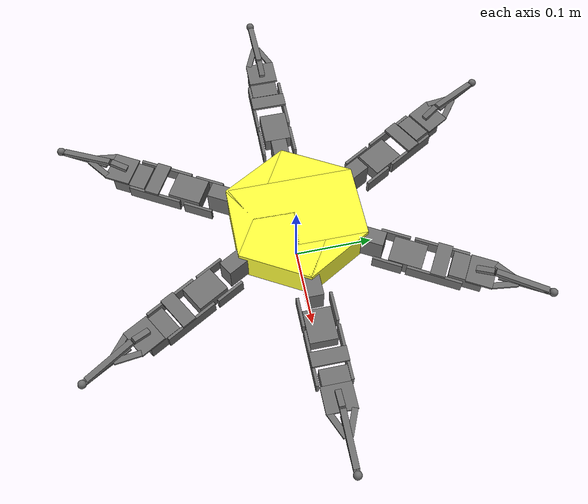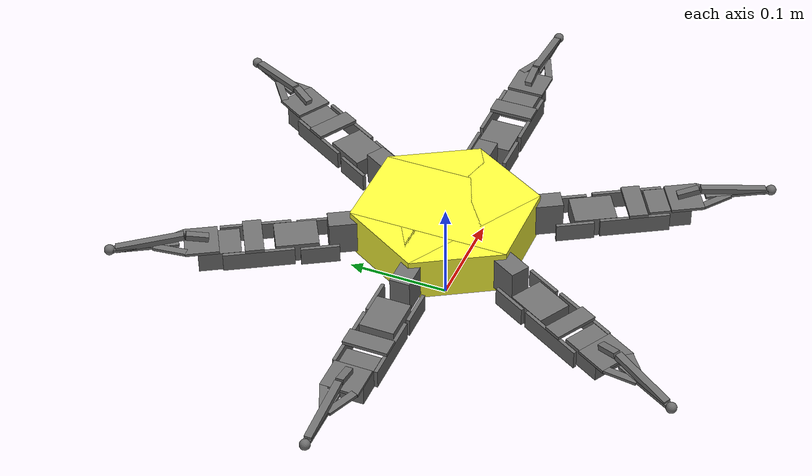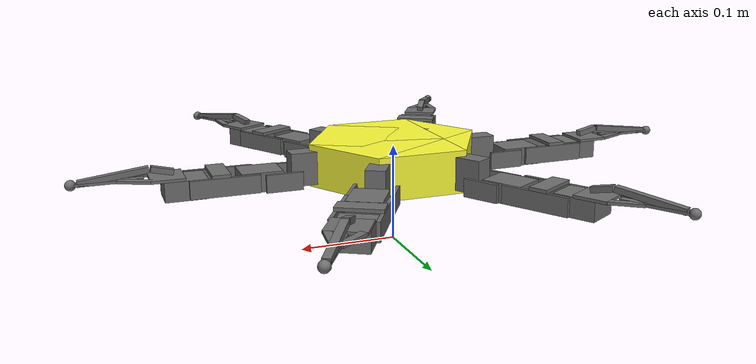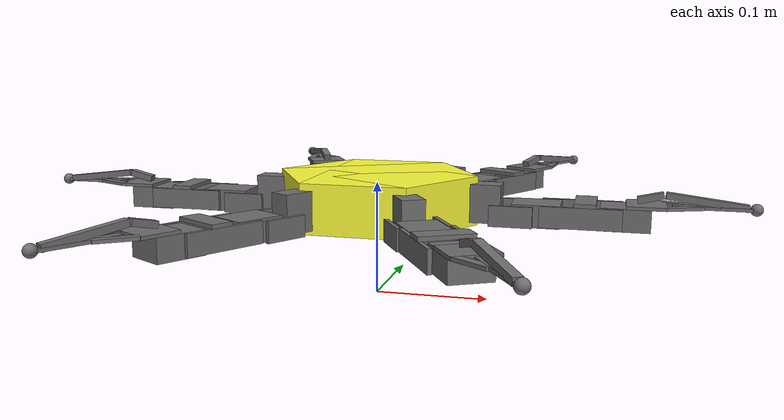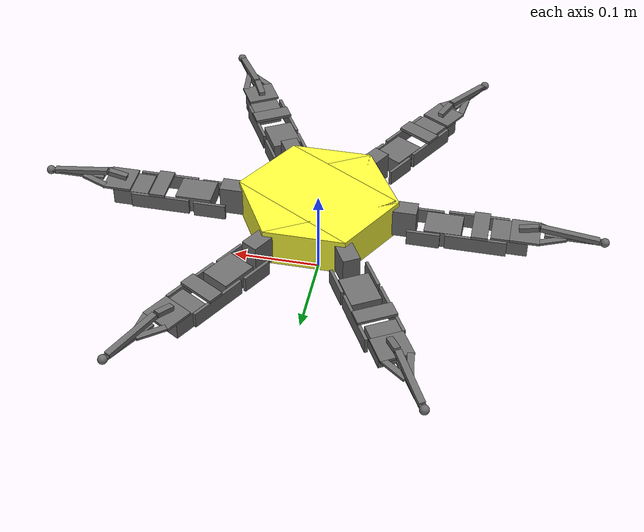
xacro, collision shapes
<?xml version="1.0"?>
<robot xmlns:xacro="http://www.ros.org/wiki/xacro" name="hexapod_bot">
    <link name="robot_base">
        <inertial>
            <origin rpy="-0.000000 -1.570796 0.000000" xyz="0.000000 0.000000 0.088000" />
            <inertia ixz="0.0" iyz="-1.0599726169012e-25" izz="0.0013510887854536" ixy="0.0" ixx="0.0024276637552773" iyy="0.0013510883080843" />
            <mass value="0.10000000149012" />
        </inertial>
        <collision name="hexapod">
            <origin rpy="3.141592 3.141593 -1.047198" xyz="0.000000 0.000000 0.088000" />
            <geometry>
                <box size="0.090000 0.155885 0.042800" />
            </geometry>
        </collision>
        <collision name="hexapod">
            <origin rpy="3.141592 3.141593 -2.094395" xyz="0.000000 0.000000 0.088000" />
            <geometry>
                <box size="0.090000 0.155885 0.042800" />
            </geometry>
        </collision>
        <collision name="hexapod">
            <origin rpy="3.141593 3.141593 3.141593" xyz="0.000000 0.000000 0.088000" />
            <geometry>
                <box size="0.090000 0.155885 0.042800" />
            </geometry>
        </collision>
        <visual name="body">
            <origin rpy="1.570796 3.141593 3.141593" xyz="-0.000000 -0.000000 0.087900" />
            <geometry>
                <mesh filename="package://hexapod_description/meshes/stl/hexapod_body_vis_1.stl" />
            </geometry>
            <material name="body_material">
                <color rgba="1.000000 1.000000 0.229358 1.0" />
            </material>
        </visual>
    </link>
    <joint type="revolute" name="joint1_">
        <axis xyz="0 0 1" />
        <parent link="robot_base" />
        <child link="link1Respondable_" />
        <origin rpy="3.141593 3.141593 3.141593" xyz="0.080000 -0.000000 0.091002" />
        <limit lower="-1.570796" upper="1.570796" effort="5" velocity="2"/>
    </joint>
    <link name="link1Respondable_">
        <inertial>
            <origin rpy="-0.000000 -1.570796 0.000000" xyz="0.014738 -0.000003 -0.005295" />
            <inertia ixz="-6.8338299564474e-06" iyz="-1.7708812030972e-08" izz="4.1533390889355e-05" ixy="-4.5641021282422e-09" ixx="7.8340611859854e-05" iyy="7.9824142668009e-05" />
            <mass value="0.050000000745058" />
        </inertial>
        <collision name="link1Respondable_">
            <origin rpy="-3.141593 3.141593 -3.141593" xyz="0.010391 -0.000000 -0.004175" />
            <geometry>
                <box size="0.040600 0.019300 0.033300" />
            </geometry>
        </collision>
        <collision name="link1Respondable_">
            <origin rpy="-3.141593 3.141593 -3.141593" xyz="0.040338 -0.019899 -0.011893" />
            <geometry>
                <box size="0.036400 0.003400 0.017900" />
            </geometry>
        </collision>
        <collision name="link1Respondable_">
            <origin rpy="-3.141593 3.141593 -3.141593" xyz="0.040338 0.019858 -0.011893" />
            <geometry>
                <box size="0.036400 0.003400 0.017900" />
            </geometry>
        </collision>
        <visual name="link1_">
            <origin rpy="1.570796 3.141593 -3.141593" xyz="0.021040 -0.000020 0.000000" />
            <geometry>
                <mesh filename="package://hexapod_description/meshes/stl/hexapod_link1__vis_1.stl" />
            </geometry>
            <material name="link1__material">
                <color rgba="0.435294 0.435294 0.435294 1.0" />
            </material>
        </visual>
        <visual name="link1_">
            <origin rpy="1.570796 3.141593 -3.141593" xyz="0.021040 -0.000020 0.000000" />
            <geometry>
                <mesh filename="package://hexapod_description/meshes/stl/hexapod_link1__vis_2.stl" />
            </geometry>
            <material name="link1__material">
                <color rgba="1.000000 1.000000 1.000000 1.0" />
            </material>
        </visual>
    </link>
    <joint type="revolute" name="joint2_">
        <axis xyz="0 0 1" />
        <parent link="link1Respondable_" />
        <child link="link2Respondable_" />
        <origin rpy="1.570796 3.141593 3.141593" xyz="0.050264 -0.000000 -0.011203" />
        <limit lower="-1.570796" upper="1.570796" effort="5" velocity="2"/>
    </joint>
    <link name="link2Respondable_">
        <inertial>
            <origin rpy="-1.570948 3.141840 1.570796" xyz="0.021368 -0.000957 -0.000929" />
            <inertia ixz="4.3307204722909e-06" iyz="1.6165304875702e-06" izz="3.1689530655159e-05" ixy="-1.4428314683974e-07" ixx="0.00010087736890985" iyy="8.0637562647446e-05" />
            <mass value="0.050000000745058" />
        </inertial>
        <collision name="link2Respondable_">
            <origin rpy="-3.141344 3.141449 -0.000000" xyz="0.010391 0.000000 -0.001311" />
            <geometry>
                <box size="0.040600 0.019300 0.033300" />
            </geometry>
        </collision>
        <collision name="link2Respondable_">
            <origin rpy="-0.000124 3.141593 1.570797" xyz="0.050584 -0.011339 -0.000000" />
            <geometry>
                <box size="0.003400 0.017800 0.043200" />
            </geometry>
        </collision>
        <collision name="link2Respondable_">
            <origin rpy="0.338915 4.712381 -0.338909" xyz="0.047122 -0.000690 -0.019879" />
            <geometry>
                <box size="0.003400 0.017900 0.067000" />
            </geometry>
        </collision>
        <collision name="link2Respondable_">
            <origin rpy="0.338915 4.712381 -0.338909" xyz="0.047122 -0.000690 0.019879" />
            <geometry>
                <box size="0.003400 0.017900 0.067000" />
            </geometry>
        </collision>
        <visual name="link2_">
            <origin rpy="3.141576 3.141592 1.570797" xyz="0.032099 -0.001709 0.001054" />
            <geometry>
                <mesh filename="package://hexapod_description/meshes/stl/hexapod_link2__vis_1.stl" />
            </geometry>
            <material name="link2__material">
                <color rgba="0.435294 0.435294 0.435294 1.0" />
            </material>
        </visual>
        <visual name="link2_">
            <origin rpy="3.141576 3.141592 1.570797" xyz="0.032099 -0.001709 0.001054" />
            <geometry>
                <mesh filename="package://hexapod_description/meshes/stl/hexapod_link2__vis_2.stl" />
            </geometry>
            <material name="link2__material">
                <color rgba="1.000000 1.000000 1.000000 1.0" />
            </material>
        </visual>
    </link>
    <joint type="revolute" name="joint3_">
        <axis xyz="0 0 1" />
        <parent link="link2Respondable_" />
        <child link="link3Respondable_" />
        <origin rpy="-3.141593 3.141593 -2.617994" xyz="0.072382 0.000000 -0.000000" />
        <limit lower="-1.570796" upper="1.570796" effort="5" velocity="2"/>
    </joint>
    <link name="link3Respondable_">
        <inertial>
            <origin rpy="1.570515 3.141150 0.856995" xyz="0.017578 -0.014182 0.000950" />
            <inertia ixz="2.5180635506699e-06" iyz="-1.7834374134828e-06" izz="1.8237452925203e-05" ixy="-1.7486273661174e-07" ixx="0.00012192281434478" iyy="0.00011563429148452" />
            <mass value="0.050000000745058" />
        </inertial>
        <collision name="link3Respondable_">
            <origin rpy="0.000000 3.141593 -0.523599" xyz="0.008999 -0.005195 0.001311" />
            <geometry>
                <box size="0.040600 0.019300 0.033300" />
            </geometry>
        </collision>
        <collision name="link3Respondable_">
            <origin rpy="-1.570796 3.141593 1.047197" xyz="0.090768 -0.065166 0.000000" />
            <geometry>
                <sphere radius="0.0049999793991446" />
            </geometry>
        </collision>
        <collision name="link3Respondable_">
            <origin rpy="-1.570796 3.141593 1.047198" xyz="0.062893 -0.049047 -0.000000" />
            <geometry>
                <box size="0.002800 0.007100 0.064000" />
            </geometry>
        </collision>
        <collision name="link3Respondable_">
            <origin rpy="-1.972222 3.141593 1.047197" xyz="0.042582 -0.037321 0.008116" />
            <geometry>
                <box size="0.002800 0.007100 0.032000" />
            </geometry>
        </collision>
        <collision name="link3Respondable_">
            <origin rpy="-1.169371 3.141593 1.047197" xyz="0.042405 -0.037218 -0.008460" />
            <geometry>
                <box size="0.002800 0.007100 0.032000" />
            </geometry>
        </collision>
        <collision name="link3Respondable_">
            <origin rpy="-1.570796 3.141593 1.047198" xyz="0.017456 -0.022814 -0.000000" />
            <geometry>
                <box size="0.002800 0.036300 0.032000" />
            </geometry>
        </collision>
        <collision name="link3Respondable_">
            <origin rpy="-1.570796 3.141593 0.820305" xyz="0.017138 -0.030056 -0.000000" />
            <geometry>
                <box size="0.005600 0.007100 0.021300" />
            </geometry>
        </collision>
        <collision name="link3Respondable_">
            <origin rpy="-1.570796 3.141593 1.169371" xyz="0.055680 -0.050546 -0.000000" />
            <geometry>
                <box size="0.005600 0.007100 0.064000" />
            </geometry>
        </collision>
        <visual name="link3_">
            <origin rpy="3.141593 3.141593 1.047198" xyz="0.039590 -0.030363 -0.002763" />
            <geometry>
                <mesh filename="package://hexapod_description/meshes/stl/hexapod_link3__vis_1.stl" />
            </geometry>
            <material name="link3__material">
                <color rgba="0.435294 0.435294 0.435294 1.0" />
            </material>
        </visual>
        <visual name="link3_">
            <origin rpy="3.141593 3.141593 1.047198" xyz="0.039590 -0.030363 -0.002763" />
            <geometry>
                <mesh filename="package://hexapod_description/meshes/stl/hexapod_link3__vis_2.stl" />
            </geometry>
            <material name="link3__material">
                <color rgba="1.000000 1.000000 0.229358 1.0" />
            </material>
        </visual>
    </link>
    <joint type="revolute" name="joint1__2">
        <axis xyz="0 0 1" />
        <parent link="robot_base" />
        <child link="link1Respondable__2" />
        <origin rpy="3.141592 3.141593 -2.094395" xyz="0.040000 0.069282 0.091002" />
        <limit lower="-1.570796" upper="1.570796" effort="5" velocity="2"/>
    </joint>
    <link name="link1Respondable__2">
        <inertial>
            <origin rpy="-0.000000 -1.570796 0.000000" xyz="0.014738 -0.000003 -0.005295" />
            <inertia ixz="-6.8338299564474e-06" iyz="-1.7708812030972e-08" izz="4.1533390889355e-05" ixy="-4.5641021282422e-09" ixx="7.8340611859854e-05" iyy="7.9824142668009e-05" />
            <mass value="0.050000000745058" />
        </inertial>
        <collision name="link1Respondable_">
            <origin rpy="3.141593 3.141593 -3.141593" xyz="0.010391 -0.000000 -0.004175" />
            <geometry>
                <box size="0.040600 0.019300 0.033300" />
            </geometry>
        </collision>
        <collision name="link1Respondable_">
            <origin rpy="3.141593 3.141593 -3.141593" xyz="0.040338 -0.019899 -0.011893" />
            <geometry>
                <box size="0.036400 0.003400 0.017900" />
            </geometry>
        </collision>
        <collision name="link1Respondable_">
            <origin rpy="3.141593 3.141593 -3.141593" xyz="0.040338 0.019858 -0.011893" />
            <geometry>
                <box size="0.036400 0.003400 0.017900" />
            </geometry>
        </collision>
        <visual name="link1_">
            <origin rpy="1.570796 3.141593 -3.141593" xyz="0.021040 -0.000020 0.000000" />
            <geometry>
                <mesh filename="package://hexapod_description/meshes/stl/hexapod_link1__2_vis_1.stl" />
            </geometry>
            <material name="link1__2_material">
                <color rgba="0.435294 0.435294 0.435294 1.0" />
            </material>
        </visual>
        <visual name="link1_">
            <origin rpy="1.570796 3.141593 -3.141593" xyz="0.021040 -0.000020 0.000000" />
            <geometry>
                <mesh filename="package://hexapod_description/meshes/stl/hexapod_link1__2_vis_2.stl" />
            </geometry>
            <material name="link1__2_material">
                <color rgba="1.000000 1.000000 1.000000 1.0" />
            </material>
        </visual>
    </link>
    <joint type="revolute" name="joint2__2">
        <axis xyz="0 0 1" />
        <parent link="link1Respondable__2" />
        <child link="link2Respondable__2" />
        <origin rpy="1.570796 3.141593 3.141593" xyz="0.050264 -0.000000 -0.011203" />
        <limit lower="-1.570796" upper="1.570796" effort="5" velocity="2"/>
    </joint>
    <link name="link2Respondable__2">
        <inertial>
            <origin rpy="-1.570948 3.141840 1.570796" xyz="0.021368 -0.000957 -0.000929" />
            <inertia ixz="4.3307204722909e-06" iyz="1.6165304875702e-06" izz="3.1689530655159e-05" ixy="-1.4428314683974e-07" ixx="0.00010087736890985" iyy="8.0637562647446e-05" />
            <mass value="0.050000000745058" />
        </inertial>
        <collision name="link2Respondable_">
            <origin rpy="-3.141344 3.141449 -0.000000" xyz="0.010391 0.000000 -0.001311" />
            <geometry>
                <box size="0.040600 0.019300 0.033300" />
            </geometry>
        </collision>
        <collision name="link2Respondable_">
            <origin rpy="-0.000124 3.141593 1.570797" xyz="0.050584 -0.011339 -0.000000" />
            <geometry>
                <box size="0.003400 0.017800 0.043200" />
            </geometry>
        </collision>
        <collision name="link2Respondable_">
            <origin rpy="0.338915 4.712381 -0.338909" xyz="0.047122 -0.000690 -0.019879" />
            <geometry>
                <box size="0.003400 0.017900 0.067000" />
            </geometry>
        </collision>
        <collision name="link2Respondable_">
            <origin rpy="0.338915 4.712381 -0.338909" xyz="0.047122 -0.000690 0.019879" />
            <geometry>
                <box size="0.003400 0.017900 0.067000" />
            </geometry>
        </collision>
        <visual name="link2_">
            <origin rpy="3.141576 3.141592 1.570797" xyz="0.032099 -0.001709 0.001054" />
            <geometry>
                <mesh filename="package://hexapod_description/meshes/stl/hexapod_link2__2_vis_1.stl" />
            </geometry>
            <material name="link2__2_material">
                <color rgba="0.435294 0.435294 0.435294 1.0" />
            </material>
        </visual>
        <visual name="link2_">
            <origin rpy="3.141576 3.141592 1.570797" xyz="0.032099 -0.001709 0.001054" />
            <geometry>
                <mesh filename="package://hexapod_description/meshes/stl/hexapod_link2__2_vis_2.stl" />
            </geometry>
            <material name="link2__2_material">
                <color rgba="1.000000 1.000000 1.000000 1.0" />
            </material>
        </visual>
    </link>
    <joint type="revolute" name="joint3__2">
        <axis xyz="0 0 1" />
        <parent link="link2Respondable__2" />
        <child link="link3Respondable__2" />
        <origin rpy="-3.141593 3.141593 -2.617994" xyz="0.072382 0.000000 -0.000000" />
        <limit lower="-1.570796" upper="1.570796" effort="5" velocity="2"/>
    </joint>
    <link name="link3Respondable__2">
        <inertial>
            <origin rpy="1.570515 3.141150 0.856995" xyz="0.017578 -0.014182 0.000950" />
            <inertia ixz="2.5180635506699e-06" iyz="-1.7834374134828e-06" izz="1.8237452925203e-05" ixy="-1.7486273661174e-07" ixx="0.00012192281434478" iyy="0.00011563429148452" />
            <mass value="0.050000000745058" />
        </inertial>
        <collision name="link3Respondable_">
            <origin rpy="0.000000 3.141593 -0.523599" xyz="0.008999 -0.005195 0.001311" />
            <geometry>
                <box size="0.040600 0.019300 0.033300" />
            </geometry>
        </collision>
        <collision name="link3Respondable_">
            <origin rpy="-1.570796 3.141593 1.047197" xyz="0.090768 -0.065166 0.000000" />
            <geometry>
                <sphere radius="0.0049999793991446" />
            </geometry>
        </collision>
        <collision name="link3Respondable_">
            <origin rpy="-1.570796 3.141593 1.047198" xyz="0.062893 -0.049047 -0.000000" />
            <geometry>
                <box size="0.002800 0.007100 0.064000" />
            </geometry>
        </collision>
        <collision name="link3Respondable_">
            <origin rpy="-1.972222 3.141593 1.047197" xyz="0.042582 -0.037321 0.008116" />
            <geometry>
                <box size="0.002800 0.007100 0.032000" />
            </geometry>
        </collision>
        <collision name="link3Respondable_">
            <origin rpy="-1.169371 3.141593 1.047197" xyz="0.042405 -0.037218 -0.008460" />
            <geometry>
                <box size="0.002800 0.007100 0.032000" />
            </geometry>
        </collision>
        <collision name="link3Respondable_">
            <origin rpy="-1.570796 3.141593 1.047198" xyz="0.017456 -0.022814 -0.000000" />
            <geometry>
                <box size="0.002800 0.036300 0.032000" />
            </geometry>
        </collision>
        <collision name="link3Respondable_">
            <origin rpy="-1.570796 3.141593 0.820305" xyz="0.017138 -0.030056 -0.000000" />
            <geometry>
                <box size="0.005600 0.007100 0.021300" />
            </geometry>
        </collision>
        <collision name="link3Respondable_">
            <origin rpy="-1.570796 3.141593 1.169371" xyz="0.055680 -0.050546 -0.000000" />
            <geometry>
                <box size="0.005600 0.007100 0.064000" />
            </geometry>
        </collision>
        <visual name="link3_">
            <origin rpy="0.000102 3.141594 1.047196" xyz="0.039590 -0.030363 -0.002763" />
            <geometry>
                <mesh filename="package://hexapod_description/meshes/stl/hexapod_link3__2_vis_1.stl" />
            </geometry>
            <material name="link3__2_material">
                <color rgba="0.435294 0.435294 0.435294 1.0" />
            </material>
        </visual>
        <visual name="link3_">
            <origin rpy="0.000102 3.141594 1.047196" xyz="0.039590 -0.030363 -0.002763" />
            <geometry>
                <mesh filename="package://hexapod_description/meshes/stl/hexapod_link3__2_vis_2.stl" />
            </geometry>
            <material name="link3__2_material">
                <color rgba="1.000000 1.000000 0.229358 1.0" />
            </material>
        </visual>
    </link>
    <joint type="revolute" name="joint1__3">
        <axis xyz="0 0 1" />
        <parent link="robot_base" />
        <child link="link1Respondable__3" />
        <origin rpy="3.141592 3.141593 -1.047197" xyz="-0.040000 0.069282 0.091002" />
        <limit lower="-1.570796" upper="1.570796" effort="5" velocity="2"/>
    </joint>
    <link name="link1Respondable__3">
        <inertial>
            <origin rpy="0.000000 -1.570796 0.000000" xyz="0.014738 -0.000003 -0.005295" />
            <inertia ixz="-6.8338299564474e-06" iyz="-1.7708812030972e-08" izz="4.1533390889355e-05" ixy="-4.5641021282422e-09" ixx="7.8340611859854e-05" iyy="7.9824142668009e-05" />
            <mass value="0.050000000745058" />
        </inertial>
        <collision name="link1Respondable_">
            <origin rpy="3.141593 3.141593 -3.141593" xyz="0.010391 -0.000000 -0.004175" />
            <geometry>
                <box size="0.040600 0.019300 0.033300" />
            </geometry>
        </collision>
        <collision name="link1Respondable_">
            <origin rpy="3.141593 3.141593 -3.141593" xyz="0.040338 -0.019899 -0.011893" />
            <geometry>
                <box size="0.036400 0.003400 0.017900" />
            </geometry>
        </collision>
        <collision name="link1Respondable_">
            <origin rpy="3.141593 3.141593 -3.141593" xyz="0.040338 0.019858 -0.011893" />
            <geometry>
                <box size="0.036400 0.003400 0.017900" />
            </geometry>
        </collision>
        <visual name="link1_">
            <origin rpy="1.570796 3.141593 -3.141593" xyz="0.021040 -0.000020 0.000000" />
            <geometry>
                <mesh filename="package://hexapod_description/meshes/stl/hexapod_link1__3_vis_1.stl" />
            </geometry>
            <material name="link1__3_material">
                <color rgba="0.435294 0.435294 0.435294 1.0" />
            </material>
        </visual>
        <visual name="link1_">
            <origin rpy="1.570796 3.141593 -3.141593" xyz="0.021040 -0.000020 0.000000" />
            <geometry>
                <mesh filename="package://hexapod_description/meshes/stl/hexapod_link1__3_vis_2.stl" />
            </geometry>
            <material name="link1__3_material">
                <color rgba="1.000000 1.000000 1.000000 1.0" />
            </material>
        </visual>
    </link>
    <joint type="revolute" name="joint2__3">
        <axis xyz="0 0 1" />
        <parent link="link1Respondable__3" />
        <child link="link2Respondable__3" />
        <origin rpy="1.570796 3.141593 3.141593" xyz="0.050264 -0.000000 -0.011203" />
        <limit lower="-1.570796" upper="1.570796" effort="5" velocity="2"/>
    </joint>
    <link name="link2Respondable__3">
        <inertial>
            <origin rpy="-1.570948 3.141840 1.570796" xyz="0.021368 -0.000957 -0.000929" />
            <inertia ixz="4.3307204722909e-06" iyz="1.6165304875702e-06" izz="3.1689530655159e-05" ixy="-1.4428314683974e-07" ixx="0.00010087736890985" iyy="8.0637562647446e-05" />
            <mass value="0.050000000745058" />
        </inertial>
        <collision name="link2Respondable_">
            <origin rpy="-3.141344 3.141449 -0.000000" xyz="0.010391 0.000000 -0.001311" />
            <geometry>
                <box size="0.040600 0.019300 0.033300" />
            </geometry>
        </collision>
        <collision name="link2Respondable_">
            <origin rpy="-0.000124 3.141593 1.570797" xyz="0.050584 -0.011339 -0.000000" />
            <geometry>
                <box size="0.003400 0.017800 0.043200" />
            </geometry>
        </collision>
        <collision name="link2Respondable_">
            <origin rpy="0.338915 4.712381 -0.338909" xyz="0.047122 -0.000690 -0.019879" />
            <geometry>
                <box size="0.003400 0.017900 0.067000" />
            </geometry>
        </collision>
        <collision name="link2Respondable_">
            <origin rpy="0.338915 4.712381 -0.338909" xyz="0.047122 -0.000690 0.019879" />
            <geometry>
                <box size="0.003400 0.017900 0.067000" />
            </geometry>
        </collision>
        <visual name="link2_">
            <origin rpy="3.141576 3.141592 1.570797" xyz="0.032099 -0.001709 0.001054" />
            <geometry>
                <mesh filename="package://hexapod_description/meshes/stl/hexapod_link2__3_vis_1.stl" />
            </geometry>
            <material name="link2__3_material">
                <color rgba="0.435294 0.435294 0.435294 1.0" />
            </material>
        </visual>
        <visual name="link2_">
            <origin rpy="3.141576 3.141592 1.570797" xyz="0.032099 -0.001709 0.001054" />
            <geometry>
                <mesh filename="package://hexapod_description/meshes/stl/hexapod_link2__3_vis_2.stl" />
            </geometry>
            <material name="link2__3_material">
                <color rgba="1.000000 1.000000 1.000000 1.0" />
            </material>
        </visual>
    </link>
    <joint type="revolute" name="joint3__3">
        <axis xyz="0 0 1" />
        <parent link="link2Respondable__3" />
        <child link="link3Respondable__3" />
        <origin rpy="-3.141593 3.141593 -2.617994" xyz="0.072382 0.000000 -0.000000" />
        <limit lower="-1.570796" upper="1.570796" effort="5" velocity="2"/>
    </joint>
    <link name="link3Respondable__3">
        <inertial>
            <origin rpy="1.570515 3.141150 0.856995" xyz="0.017578 -0.014182 0.000950" />
            <inertia ixz="2.5180635506699e-06" iyz="-1.7834374134828e-06" izz="1.8237452925203e-05" ixy="-1.7486273661174e-07" ixx="0.00012192281434478" iyy="0.00011563429148452" />
            <mass value="0.050000000745058" />
        </inertial>
        <collision name="link3Respondable_">
            <origin rpy="0.000000 3.141593 -0.523599" xyz="0.008999 -0.005195 0.001311" />
            <geometry>
                <box size="0.040600 0.019300 0.033300" />
            </geometry>
        </collision>
        <collision name="link3Respondable_">
            <origin rpy="-1.570796 3.141593 1.047197" xyz="0.090768 -0.065166 0.000000" />
            <geometry>
                <sphere radius="0.0049999793991446" />
            </geometry>
        </collision>
        <collision name="link3Respondable_">
            <origin rpy="-1.570796 3.141593 1.047198" xyz="0.062893 -0.049047 -0.000000" />
            <geometry>
                <box size="0.002800 0.007100 0.064000" />
            </geometry>
        </collision>
        <collision name="link3Respondable_">
            <origin rpy="-1.972222 3.141593 1.047197" xyz="0.042582 -0.037321 0.008116" />
            <geometry>
                <box size="0.002800 0.007100 0.032000" />
            </geometry>
        </collision>
        <collision name="link3Respondable_">
            <origin rpy="-1.169371 3.141593 1.047197" xyz="0.042405 -0.037218 -0.008460" />
            <geometry>
                <box size="0.002800 0.007100 0.032000" />
            </geometry>
        </collision>
        <collision name="link3Respondable_">
            <origin rpy="-1.570796 3.141593 1.047198" xyz="0.017456 -0.022814 -0.000000" />
            <geometry>
                <box size="0.002800 0.036300 0.032000" />
            </geometry>
        </collision>
        <collision name="link3Respondable_">
            <origin rpy="-1.570796 3.141593 0.820305" xyz="0.017138 -0.030056 -0.000000" />
            <geometry>
                <box size="0.005600 0.007100 0.021300" />
            </geometry>
        </collision>
        <collision name="link3Respondable_">
            <origin rpy="-1.570796 3.141593 1.169371" xyz="0.055680 -0.050546 -0.000000" />
            <geometry>
                <box size="0.005600 0.007100 0.064000" />
            </geometry>
        </collision>
        <visual name="link3_">
            <origin rpy="3.141593 3.141593 1.047198" xyz="0.039590 -0.030363 -0.002763" />
            <geometry>
                <mesh filename="package://hexapod_description/meshes/stl/hexapod_link3__3_vis_1.stl" />
            </geometry>
            <material name="link3__3_material">
                <color rgba="0.435294 0.435294 0.435294 1.0" />
            </material>
        </visual>
        <visual name="link3_">
            <origin rpy="3.141593 3.141593 1.047198" xyz="0.039590 -0.030363 -0.002763" />
            <geometry>
                <mesh filename="package://hexapod_description/meshes/stl/hexapod_link3__3_vis_2.stl" />
            </geometry>
            <material name="link3__3_material">
                <color rgba="1.000000 1.000000 0.229358 1.0" />
            </material>
        </visual>
    </link>
    <joint type="revolute" name="joint1__4">
        <axis xyz="0 0 1" />
        <parent link="robot_base" />
        <child link="link1Respondable__4" />
        <origin rpy="-3.141593 3.141592 0.000000" xyz="-0.080000 0.000000 0.091002" />
        <limit lower="-1.570796" upper="1.570796" effort="5" velocity="2"/>
    </joint>
    <link name="link1Respondable__4">
        <inertial>
            <origin rpy="0.000000 -1.570796 0.000000" xyz="0.014738 -0.000003 -0.005295" />
            <inertia ixz="-6.8338299564474e-06" iyz="-1.7708812030972e-08" izz="4.1533390889355e-05" ixy="-4.5641021282422e-09" ixx="7.8340611859854e-05" iyy="7.9824142668009e-05" />
            <mass value="0.050000000745058" />
        </inertial>
        <collision name="link1Respondable_">
            <origin rpy="3.141593 3.141593 -3.141593" xyz="0.010391 -0.000000 -0.004175" />
            <geometry>
                <box size="0.040600 0.019300 0.033300" />
            </geometry>
        </collision>
        <collision name="link1Respondable_">
            <origin rpy="3.141593 3.141593 -3.141593" xyz="0.040338 -0.019899 -0.011893" />
            <geometry>
                <box size="0.036400 0.003400 0.017900" />
            </geometry>
        </collision>
        <collision name="link1Respondable_">
            <origin rpy="3.141593 3.141593 -3.141593" xyz="0.040338 0.019858 -0.011893" />
            <geometry>
                <box size="0.036400 0.003400 0.017900" />
            </geometry>
        </collision>
        <visual name="link1_">
            <origin rpy="1.570796 3.141593 -3.141593" xyz="0.021040 -0.000020 0.000000" />
            <geometry>
                <mesh filename="package://hexapod_description/meshes/stl/hexapod_link1__4_vis_1.stl" />
            </geometry>
            <material name="link1__4_material">
                <color rgba="0.435294 0.435294 0.435294 1.0" />
            </material>
        </visual>
        <visual name="link1_">
            <origin rpy="1.570796 3.141593 -3.141593" xyz="0.021040 -0.000020 0.000000" />
            <geometry>
                <mesh filename="package://hexapod_description/meshes/stl/hexapod_link1__4_vis_2.stl" />
            </geometry>
            <material name="link1__4_material">
                <color rgba="1.000000 1.000000 1.000000 1.0" />
            </material>
        </visual>
    </link>
    <joint type="revolute" name="joint2__4">
        <axis xyz="0 0 1" />
        <parent link="link1Respondable__4" />
        <child link="link2Respondable__4" />
        <origin rpy="1.570796 3.141593 -3.141593" xyz="0.050264 -0.000000 -0.011203" />
        <limit lower="-1.570796" upper="1.570796" effort="5" velocity="2"/>
    </joint>
    <link name="link2Respondable__4">
        <inertial>
            <origin rpy="-1.570948 3.141840 1.570796" xyz="0.021368 -0.000957 -0.000929" />
            <inertia ixz="4.3307204722909e-06" iyz="1.6165304875702e-06" izz="3.1689530655159e-05" ixy="-1.4428314683974e-07" ixx="0.00010087736890985" iyy="8.0637562647446e-05" />
            <mass value="0.050000000745058" />
        </inertial>
        <collision name="link2Respondable_">
            <origin rpy="-3.141344 3.141449 -0.000000" xyz="0.010391 0.000000 -0.001311" />
            <geometry>
                <box size="0.040600 0.019300 0.033300" />
            </geometry>
        </collision>
        <collision name="link2Respondable_">
            <origin rpy="-0.000124 3.141593 1.570797" xyz="0.050584 -0.011339 -0.000000" />
            <geometry>
                <box size="0.003400 0.017800 0.043200" />
            </geometry>
        </collision>
        <collision name="link2Respondable_">
            <origin rpy="0.338915 4.712381 -0.338909" xyz="0.047122 -0.000690 -0.019879" />
            <geometry>
                <box size="0.003400 0.017900 0.067000" />
            </geometry>
        </collision>
        <collision name="link2Respondable_">
            <origin rpy="0.338915 4.712381 -0.338909" xyz="0.047122 -0.000690 0.019879" />
            <geometry>
                <box size="0.003400 0.017900 0.067000" />
            </geometry>
        </collision>
        <visual name="link2_">
            <origin rpy="3.141576 3.141592 1.570797" xyz="0.032099 -0.001709 0.001054" />
            <geometry>
                <mesh filename="package://hexapod_description/meshes/stl/hexapod_link2__4_vis_1.stl" />
            </geometry>
            <material name="link2__4_material">
                <color rgba="0.435294 0.435294 0.435294 1.0" />
            </material>
        </visual>
        <visual name="link2_">
            <origin rpy="3.141576 3.141592 1.570797" xyz="0.032099 -0.001709 0.001054" />
            <geometry>
                <mesh filename="package://hexapod_description/meshes/stl/hexapod_link2__4_vis_2.stl" />
            </geometry>
            <material name="link2__4_material">
                <color rgba="1.000000 1.000000 1.000000 1.0" />
            </material>
        </visual>
    </link>
    <joint type="revolute" name="joint3__4">
        <axis xyz="0 0 1" />
        <parent link="link2Respondable__4" />
        <child link="link3Respondable__4" />
        <origin rpy="-3.141593 3.141593 -2.617994" xyz="0.072382 0.000000 -0.000000" />
        <limit lower="-1.570796" upper="1.570796" effort="5" velocity="2"/>
    </joint>
    <link name="link3Respondable__4">
        <inertial>
            <origin rpy="1.570515 3.141150 0.856995" xyz="0.017578 -0.014182 0.000950" />
            <inertia ixz="2.5180635506699e-06" iyz="-1.7834374134828e-06" izz="1.8237452925203e-05" ixy="-1.7486273661174e-07" ixx="0.00012192281434478" iyy="0.00011563429148452" />
            <mass value="0.050000000745058" />
        </inertial>
        <collision name="link3Respondable_">
            <origin rpy="0.000000 3.141593 -0.523599" xyz="0.008999 -0.005195 0.001311" />
            <geometry>
                <box size="0.040600 0.019300 0.033300" />
            </geometry>
        </collision>
        <collision name="link3Respondable_">
            <origin rpy="-1.570796 3.141593 1.047197" xyz="0.090768 -0.065166 0.000000" />
            <geometry>
                <sphere radius="0.0049999793991446" />
            </geometry>
        </collision>
        <collision name="link3Respondable_">
            <origin rpy="-1.570796 3.141593 1.047198" xyz="0.062893 -0.049047 -0.000000" />
            <geometry>
                <box size="0.002800 0.007100 0.064000" />
            </geometry>
        </collision>
        <collision name="link3Respondable_">
            <origin rpy="-1.972222 3.141593 1.047197" xyz="0.042582 -0.037321 0.008116" />
            <geometry>
                <box size="0.002800 0.007100 0.032000" />
            </geometry>
        </collision>
        <collision name="link3Respondable_">
            <origin rpy="-1.169371 3.141593 1.047197" xyz="0.042405 -0.037218 -0.008460" />
            <geometry>
                <box size="0.002800 0.007100 0.032000" />
            </geometry>
        </collision>
        <collision name="link3Respondable_">
            <origin rpy="-1.570796 3.141593 1.047198" xyz="0.017456 -0.022814 -0.000000" />
            <geometry>
                <box size="0.002800 0.036300 0.032000" />
            </geometry>
        </collision>
        <collision name="link3Respondable_">
            <origin rpy="-1.570796 3.141593 0.820305" xyz="0.017138 -0.030056 -0.000000" />
            <geometry>
                <box size="0.005600 0.007100 0.021300" />
            </geometry>
        </collision>
        <collision name="link3Respondable_">
            <origin rpy="-1.570796 3.141593 1.169371" xyz="0.055680 -0.050546 -0.000000" />
            <geometry>
                <box size="0.005600 0.007100 0.064000" />
            </geometry>
        </collision>
        <visual name="link3_">
            <origin rpy="3.141589 3.141593 1.047194" xyz="0.039590 -0.030363 -0.002764" />
            <geometry>
                <mesh filename="package://hexapod_description/meshes/stl/hexapod_link3__4_vis_1.stl" />
            </geometry>
            <material name="link3__4_material">
                <color rgba="0.435294 0.435294 0.435294 1.0" />
            </material>
        </visual>
        <visual name="link3_">
            <origin rpy="3.141589 3.141593 1.047194" xyz="0.039590 -0.030363 -0.002764" />
            <geometry>
                <mesh filename="package://hexapod_description/meshes/stl/hexapod_link3__4_vis_2.stl" />
            </geometry>
            <material name="link3__4_material">
                <color rgba="1.000000 1.000000 0.229358 1.0" />
            </material>
        </visual>
    </link>
    <joint type="revolute" name="joint1__5">
        <axis xyz="0 0 1" />
        <parent link="robot_base" />
        <child link="link1Respondable__5" />
        <origin rpy="-3.141592 3.141593 1.047198" xyz="-0.040000 -0.069282 0.091002" />
        <limit lower="-1.570796" upper="1.570796" effort="5" velocity="2"/>
    </joint>
    <link name="link1Respondable__5">
        <inertial>
            <origin rpy="-0.000000 -1.570796 0.000000" xyz="0.014738 -0.000003 -0.005295" />
            <inertia ixz="-6.8338299564474e-06" iyz="-1.7708812030972e-08" izz="4.1533390889355e-05" ixy="-4.5641021282422e-09" ixx="7.8340611859854e-05" iyy="7.9824142668009e-05" />
            <mass value="0.050000000745058" />
        </inertial>
        <collision name="link1Respondable_">
            <origin rpy="3.141593 3.141593 3.141593" xyz="0.010391 -0.000000 -0.004175" />
            <geometry>
                <box size="0.040600 0.019300 0.033300" />
            </geometry>
        </collision>
        <collision name="link1Respondable_">
            <origin rpy="3.141593 3.141593 3.141593" xyz="0.040338 -0.019899 -0.011893" />
            <geometry>
                <box size="0.036400 0.003400 0.017900" />
            </geometry>
        </collision>
        <collision name="link1Respondable_">
            <origin rpy="3.141593 3.141593 3.141593" xyz="0.040338 0.019858 -0.011893" />
            <geometry>
                <box size="0.036400 0.003400 0.017900" />
            </geometry>
        </collision>
        <visual name="link1_">
            <origin rpy="1.570796 3.141593 3.141593" xyz="0.021040 -0.000020 0.000000" />
            <geometry>
                <mesh filename="package://hexapod_description/meshes/stl/hexapod_link1__5_vis_1.stl" />
            </geometry>
            <material name="link1__5_material">
                <color rgba="0.435294 0.435294 0.435294 1.0" />
            </material>
        </visual>
        <visual name="link1_">
            <origin rpy="1.570796 3.141593 3.141593" xyz="0.021040 -0.000020 0.000000" />
            <geometry>
                <mesh filename="package://hexapod_description/meshes/stl/hexapod_link1__5_vis_2.stl" />
            </geometry>
            <material name="link1__5_material">
                <color rgba="1.000000 1.000000 1.000000 1.0" />
            </material>
        </visual>
    </link>
    <joint type="revolute" name="joint2__5">
        <axis xyz="0 0 1" />
        <parent link="link1Respondable__5" />
        <child link="link2Respondable__5" />
        <origin rpy="1.570796 3.141593 -3.141593" xyz="0.050264 -0.000000 -0.011203" />
        <limit lower="-1.570796" upper="1.570796" effort="5" velocity="2"/>
    </joint>
    <link name="link2Respondable__5">
        <inertial>
            <origin rpy="-1.570948 3.141840 1.570796" xyz="0.021368 -0.000957 -0.000929" />
            <inertia ixz="4.3307204722909e-06" iyz="1.6165304875702e-06" izz="3.1689530655159e-05" ixy="-1.4428314683974e-07" ixx="0.00010087736890985" iyy="8.0637562647446e-05" />
            <mass value="0.050000000745058" />
        </inertial>
        <collision name="link2Respondable_">
            <origin rpy="-3.141344 3.141449 -0.000000" xyz="0.010391 0.000000 -0.001311" />
            <geometry>
                <box size="0.040600 0.019300 0.033300" />
            </geometry>
        </collision>
        <collision name="link2Respondable_">
            <origin rpy="-0.000124 3.141593 1.570797" xyz="0.050584 -0.011339 -0.000000" />
            <geometry>
                <box size="0.003400 0.017800 0.043200" />
            </geometry>
        </collision>
        <collision name="link2Respondable_">
            <origin rpy="0.338915 4.712381 -0.338909" xyz="0.047122 -0.000690 -0.019879" />
            <geometry>
                <box size="0.003400 0.017900 0.067000" />
            </geometry>
        </collision>
        <collision name="link2Respondable_">
            <origin rpy="0.338915 4.712381 -0.338909" xyz="0.047122 -0.000690 0.019879" />
            <geometry>
                <box size="0.003400 0.017900 0.067000" />
            </geometry>
        </collision>
        <visual name="link2_">
            <origin rpy="3.141576 3.141592 1.570797" xyz="0.032099 -0.001709 0.001054" />
            <geometry>
                <mesh filename="package://hexapod_description/meshes/stl/hexapod_link2__5_vis_1.stl" />
            </geometry>
            <material name="link2__5_material">
                <color rgba="0.435294 0.435294 0.435294 1.0" />
            </material>
        </visual>
        <visual name="link2_">
            <origin rpy="3.141576 3.141592 1.570797" xyz="0.032099 -0.001709 0.001054" />
            <geometry>
                <mesh filename="package://hexapod_description/meshes/stl/hexapod_link2__5_vis_2.stl" />
            </geometry>
            <material name="link2__5_material">
                <color rgba="1.000000 1.000000 1.000000 1.0" />
            </material>
        </visual>
    </link>
    <joint type="revolute" name="joint3__5">
        <axis xyz="0 0 1" />
        <parent link="link2Respondable__5" />
        <child link="link3Respondable__5" />
        <origin rpy="-3.141593 3.141593 -2.617994" xyz="0.072382 0.000000 -0.000000" />
        <limit lower="-1.570796" upper="1.570796" effort="5" velocity="2"/>
    </joint>
    <link name="link3Respondable__5">
        <inertial>
            <origin rpy="1.570515 3.141150 0.856995" xyz="0.017578 -0.014182 0.000950" />
            <inertia ixz="2.5180635506699e-06" iyz="-1.7834374134828e-06" izz="1.8237452925203e-05" ixy="-1.7486273661174e-07" ixx="0.00012192281434478" iyy="0.00011563429148452" />
            <mass value="0.050000000745058" />
        </inertial>
        <collision name="link3Respondable_">
            <origin rpy="0.000000 3.141593 -0.523599" xyz="0.008999 -0.005195 0.001311" />
            <geometry>
                <box size="0.040600 0.019300 0.033300" />
            </geometry>
        </collision>
        <collision name="link3Respondable_">
            <origin rpy="-1.570796 3.141593 1.047197" xyz="0.090768 -0.065166 0.000000" />
            <geometry>
                <sphere radius="0.0049999793991446" />
            </geometry>
        </collision>
        <collision name="link3Respondable_">
            <origin rpy="-1.570796 3.141593 1.047198" xyz="0.062893 -0.049047 -0.000000" />
            <geometry>
                <box size="0.002800 0.007100 0.064000" />
            </geometry>
        </collision>
        <collision name="link3Respondable_">
            <origin rpy="-1.972222 3.141593 1.047197" xyz="0.042582 -0.037321 0.008116" />
            <geometry>
                <box size="0.002800 0.007100 0.032000" />
            </geometry>
        </collision>
        <collision name="link3Respondable_">
            <origin rpy="-1.169371 3.141593 1.047197" xyz="0.042405 -0.037218 -0.008460" />
            <geometry>
                <box size="0.002800 0.007100 0.032000" />
            </geometry>
        </collision>
        <collision name="link3Respondable_">
            <origin rpy="-1.570796 3.141593 1.047198" xyz="0.017456 -0.022814 -0.000000" />
            <geometry>
                <box size="0.002800 0.036300 0.032000" />
            </geometry>
        </collision>
        <collision name="link3Respondable_">
            <origin rpy="-1.570796 3.141593 0.820305" xyz="0.017138 -0.030056 -0.000000" />
            <geometry>
                <box size="0.005600 0.007100 0.021300" />
            </geometry>
        </collision>
        <collision name="link3Respondable_">
            <origin rpy="-1.570796 3.141593 1.169371" xyz="0.055680 -0.050546 -0.000000" />
            <geometry>
                <box size="0.005600 0.007100 0.064000" />
            </geometry>
        </collision>
        <visual name="link3_">
            <origin rpy="0 3.141593 1.047196" xyz="0.039590 -0.030363 -0.002763" />
            <geometry>
                <mesh filename="package://hexapod_description/meshes/stl/hexapod_link3__5_vis_1.stl" />
            </geometry>
            <material name="link3__5_material">
                <color rgba="0.435294 0.435294 0.435294 1.0" />
            </material>
        </visual>
        <visual name="link3_">
            <origin rpy="0 3.141593 1.047196" xyz="0.039590 -0.030363 -0.002763" />
            <geometry>
                <mesh filename="package://hexapod_description/meshes/stl/hexapod_link3__5_vis_2.stl" />
            </geometry>
            <material name="link3__5_material">
                <color rgba="1.000000 1.000000 0.229358 1.0" />
            </material>
        </visual>
    </link>
    <joint type="revolute" name="joint1__6">
        <axis xyz="0 0 1" />
        <parent link="robot_base" />
        <child link="link1Respondable__6" />
        <origin rpy="-3.141592 3.141593 2.094395" xyz="0.040000 -0.069282 0.091002" />
        <limit lower="-1.570796" upper="1.570796" effort="5" velocity="2"/>
    </joint>
    <link name="link1Respondable__6">
        <inertial>
            <origin rpy="0.000000 -1.570796 0.000000" xyz="0.014738 -0.000003 -0.005295" />
            <inertia ixz="-6.8338299564474e-06" iyz="-1.7708812030972e-08" izz="4.1533390889355e-05" ixy="-4.5641021282422e-09" ixx="7.8340611859854e-05" iyy="7.9824142668009e-05" />
            <mass value="0.050000000745058" />
        </inertial>
        <collision name="link1Respondable_">
            <origin rpy="3.141593 3.141593 -3.141593" xyz="0.010391 -0.000000 -0.004175" />
            <geometry>
                <box size="0.040600 0.019300 0.033300" />
            </geometry>
        </collision>
        <collision name="link1Respondable_">
            <origin rpy="3.141593 3.141593 -3.141593" xyz="0.040338 -0.019899 -0.011893" />
            <geometry>
                <box size="0.036400 0.003400 0.017900" />
            </geometry>
        </collision>
        <collision name="link1Respondable_">
            <origin rpy="3.141593 3.141593 -3.141593" xyz="0.040338 0.019858 -0.011893" />
            <geometry>
                <box size="0.036400 0.003400 0.017900" />
            </geometry>
        </collision>
        <visual name="link1_">
            <origin rpy="1.570796 3.141593 3.141593" xyz="0.021040 -0.000020 0.000000" />
            <geometry>
                <mesh filename="package://hexapod_description/meshes/stl/hexapod_link1__6_vis_1.stl" />
            </geometry>
            <material name="link1__6_material">
                <color rgba="0.435294 0.435294 0.435294 1.0" />
            </material>
        </visual>
        <visual name="link1_">
            <origin rpy="1.570796 3.141593 3.141593" xyz="0.021040 -0.000020 0.000000" />
            <geometry>
                <mesh filename="package://hexapod_description/meshes/stl/hexapod_link1__6_vis_2.stl" />
            </geometry>
            <material name="link1__6_material">
                <color rgba="1.000000 1.000000 1.000000 1.0" />
            </material>
        </visual>
    </link>
    <joint type="revolute" name="joint2__6">
        <axis xyz="0 0 1" />
        <parent link="link1Respondable__6" />
        <child link="link2Respondable__6" />
        <origin rpy="1.570796 3.141593 -3.141593" xyz="0.050264 -0.000000 -0.011203" />
        <limit lower="-1.570796" upper="1.570796" effort="5" velocity="2"/>
    </joint>
    <link name="link2Respondable__6">
        <inertial>
            <origin rpy="-1.570948 3.141840 1.570796" xyz="0.021368 -0.000957 -0.000929" />
            <inertia ixz="4.3307204722909e-06" iyz="1.6165304875702e-06" izz="3.1689530655159e-05" ixy="-1.4428314683974e-07" ixx="0.00010087736890985" iyy="8.0637562647446e-05" />
            <mass value="0.050000000745058" />
        </inertial>
        <collision name="link2Respondable_">
            <origin rpy="-3.141344 3.141449 -0.000000" xyz="0.010391 0.000000 -0.001311" />
            <geometry>
                <box size="0.040600 0.019300 0.033300" />
            </geometry>
        </collision>
        <collision name="link2Respondable_">
            <origin rpy="-0.000124 3.141593 1.570797" xyz="0.050584 -0.011339 -0.000000" />
            <geometry>
                <box size="0.003400 0.017800 0.043200" />
            </geometry>
        </collision>
        <collision name="link2Respondable_">
            <origin rpy="0.338915 4.712381 -0.338909" xyz="0.047122 -0.000690 -0.019879" />
            <geometry>
                <box size="0.003400 0.017900 0.067000" />
            </geometry>
        </collision>
        <collision name="link2Respondable_">
            <origin rpy="0.338915 4.712381 -0.338909" xyz="0.047122 -0.000690 0.019879" />
            <geometry>
                <box size="0.003400 0.017900 0.067000" />
            </geometry>
        </collision>
        <visual name="link2_">
            <origin rpy="3.141576 3.141592 1.570797" xyz="0.032099 -0.001709 0.001054" />
            <geometry>
                <mesh filename="package://hexapod_description/meshes/stl/hexapod_link2__6_vis_1.stl" />
            </geometry>
            <material name="link2__6_material">
                <color rgba="0.435294 0.435294 0.435294 1.0" />
            </material>
        </visual>
        <visual name="link2_">
            <origin rpy="3.141576 3.141592 1.570797" xyz="0.032099 -0.001709 0.001054" />
            <geometry>
                <mesh filename="package://hexapod_description/meshes/stl/hexapod_link2__6_vis_2.stl" />
            </geometry>
            <material name="link2__6_material">
                <color rgba="1.000000 1.000000 1.000000 1.0" />
            </material>
        </visual>
    </link>
    <joint type="revolute" name="joint3__6">
        <axis xyz="0 0 1" />
        <parent link="link2Respondable__6" />
        <child link="link3Respondable__6" />
        <origin rpy="-3.141593 3.141593 -2.617994" xyz="0.072382 0.000000 -0.000000" />
        <limit lower="-1.570796" upper="1.570796" effort="5" velocity="2"/>
    </joint>
    <link name="link3Respondable__6">
        <inertial>
            <origin rpy="1.570515 3.141150 0.856995" xyz="0.017578 -0.014182 0.000950" />
            <inertia ixz="2.5180635506699e-06" iyz="-1.7834374134828e-06" izz="1.8237452925203e-05" ixy="-1.7486273661174e-07" ixx="0.00012192281434478" iyy="0.00011563429148452" />
            <mass value="0.050000000745058" />
        </inertial>
        <collision name="link3Respondable_">
            <origin rpy="0.000000 3.141593 -0.523599" xyz="0.008999 -0.005195 0.001311" />
            <geometry>
                <box size="0.040600 0.019300 0.033300" />
            </geometry>
        </collision>
        <collision name="link3Respondable_">
            <origin rpy="-1.570796 3.141593 1.047197" xyz="0.090768 -0.065166 0.000000" />
            <geometry>
                <sphere radius="0.0049999793991446" />
            </geometry>
        </collision>
        <collision name="link3Respondable_">
            <origin rpy="-1.570796 3.141593 1.047198" xyz="0.062893 -0.049047 -0.000000" />
            <geometry>
                <box size="0.002800 0.007100 0.064000" />
            </geometry>
        </collision>
        <collision name="link3Respondable_">
            <origin rpy="-1.972222 3.141593 1.047197" xyz="0.042582 -0.037321 0.008116" />
            <geometry>
                <box size="0.002800 0.007100 0.032000" />
            </geometry>
        </collision>
        <collision name="link3Respondable_">
            <origin rpy="-1.169371 3.141593 1.047197" xyz="0.042405 -0.037218 -0.008460" />
            <geometry>
                <box size="0.002800 0.007100 0.032000" />
            </geometry>
        </collision>
        <collision name="link3Respondable_">
            <origin rpy="-1.570796 3.141593 1.047198" xyz="0.017456 -0.022814 -0.000000" />
            <geometry>
                <box size="0.002800 0.036300 0.032000" />
            </geometry>
        </collision>
        <collision name="link3Respondable_">
            <origin rpy="-1.570796 3.141593 0.820305" xyz="0.017138 -0.030056 -0.000000" />
            <geometry>
                <box size="0.005600 0.007100 0.021300" />
            </geometry>
        </collision>
        <collision name="link3Respondable_">
            <origin rpy="-1.570796 3.141593 1.169371" xyz="0.055680 -0.050546 -0.000000" />
            <geometry>
                <box size="0.005600 0.007100 0.064000" />
            </geometry>
        </collision>
        <visual name="link3_">
            <origin rpy="0 3.141590 1.047199" xyz="0.039590 -0.030363 -0.002764" />
            <geometry>
                <mesh filename="package://hexapod_description/meshes/stl/hexapod_link3__6_vis_1.stl" />
            </geometry>
            <material name="link3__6_material">
                <color rgba="0.435294 0.435294 0.435294 1.0" />
            </material>
        </visual>
        <visual name="link3_">
            <origin rpy="0 3.141590 1.047199" xyz="0.039590 -0.030363 -0.002764" />
            <geometry>
                <mesh filename="package://hexapod_description/meshes/stl/hexapod_link3__6_vis_2.stl" />
            </geometry>
            <material name="link3__6_material">
                <color rgba="1.000000 1.000000 0.229358 1.0" />
            </material>
        </visual>
    </link>
</robot>
